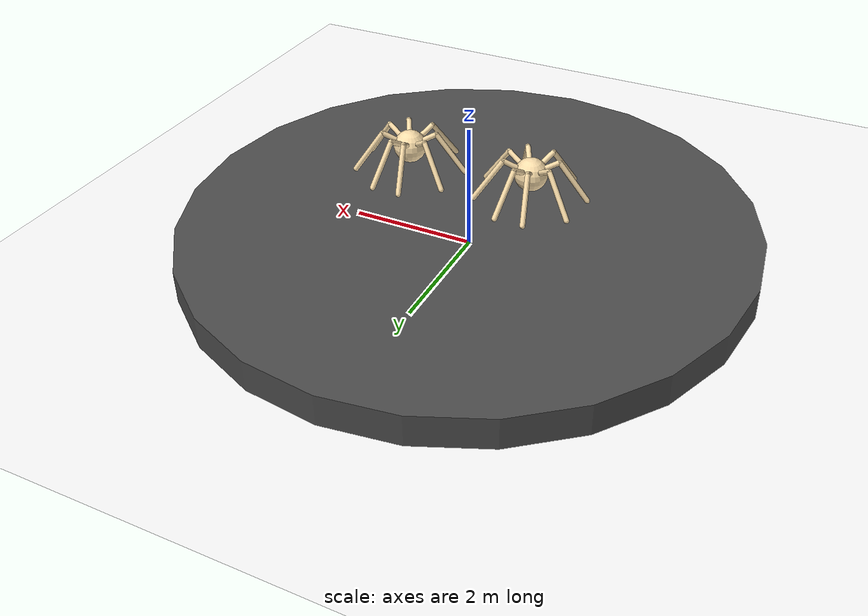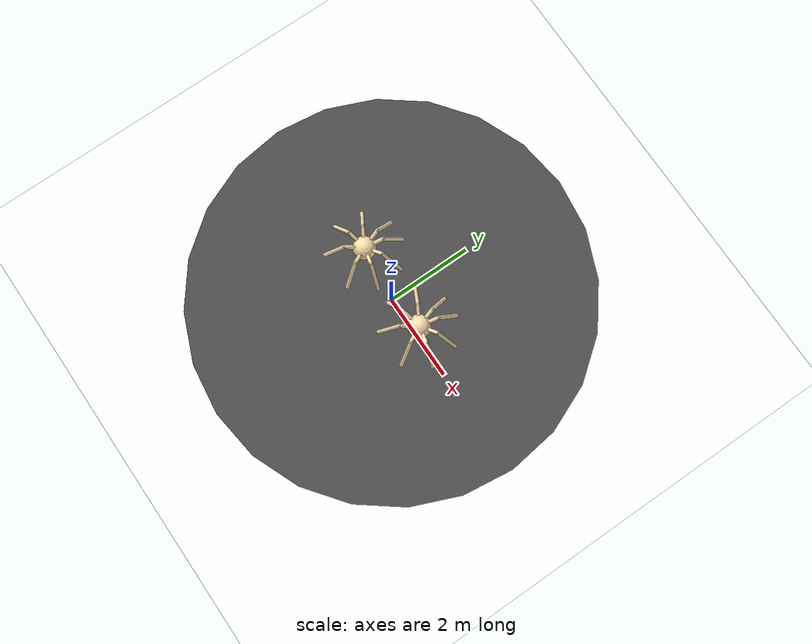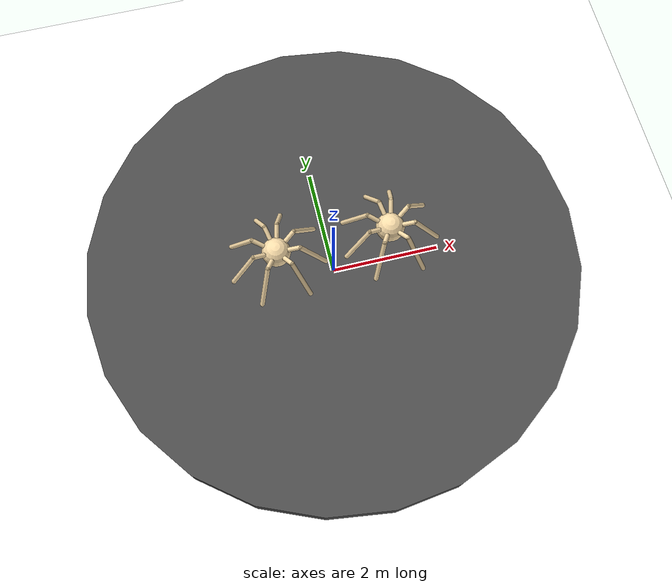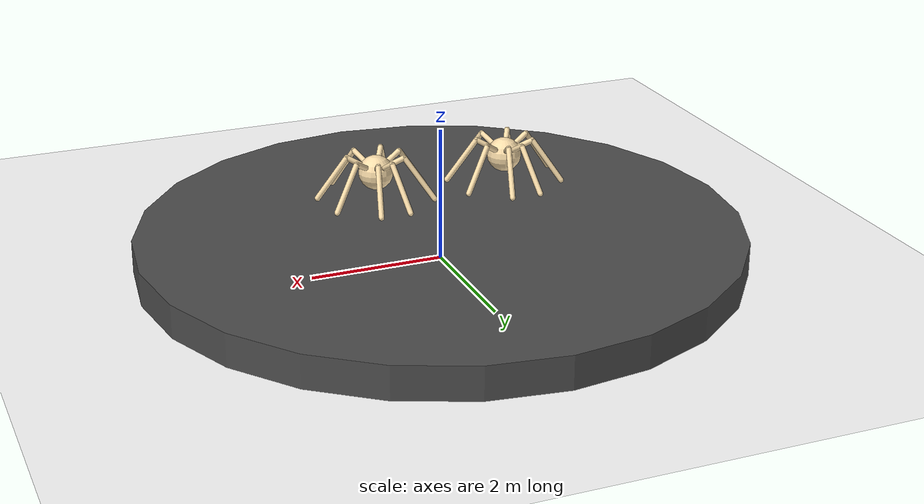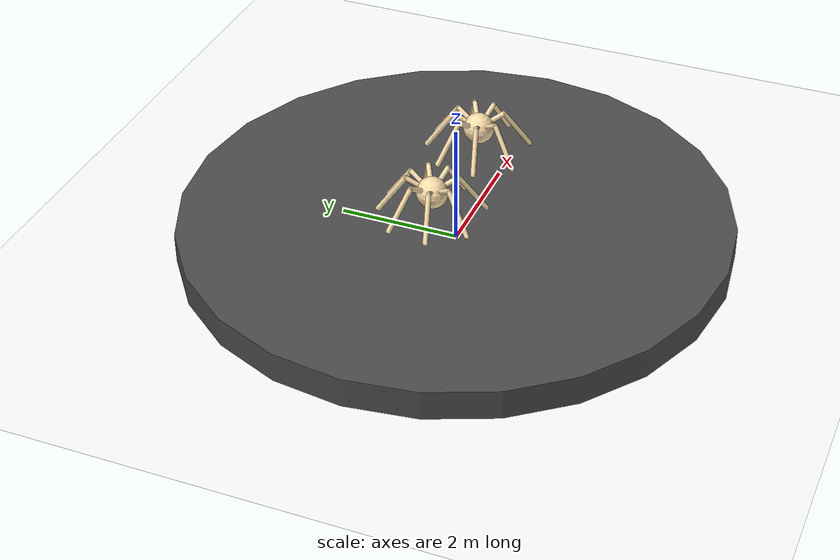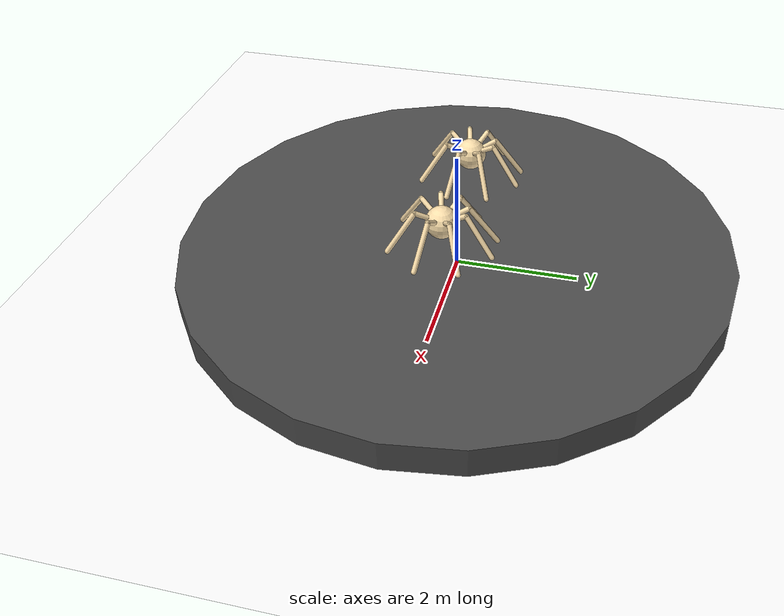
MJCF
<mujoco model="mutiagent_world">
  <compiler angle="degree" coordinate="local" inertiafromgeom="true" />
  <option integrator="RK4" timestep="0.003" solver="PGS" iterations="1000" />
  <default>
    <joint armature="1" damping="1" limited="true" />
  <default class="agent0"><geom conaffinity="0" condim="3" density="5.0" friction="1 0.5 0.5" margin="0.01" rgba="0.98 0.87 0.67 1" material="geom" contype="1" />
    <motor ctrllimited="true" ctrlrange="-1. 1." />
    <joint armature="1" damping="1" limited="true" />
  </default><default class="agent1"><geom conaffinity="1" condim="3" density="5.0" friction="1 0.5 0.5" margin="0.01" rgba="0.98 0.87 0.67 1" material="geom" contype="0" />
    <motor ctrllimited="true" ctrlrange="-1. 1." />
    <joint armature="1" damping="1" limited="true" />
  </default></default>
  <visual>
    <headlight ambient=".1 .1 .1" diffuse=".6 .6 .6" specular="0.3 0.3 0.3" />
    <map znear=".01" />
    <quality shadowsize="16384" />
  </visual>
  <asset>
    <texture builtin="gradient" height="100" rgb1="1 1 1" rgb2="0 0 0" type="skybox" width="100" />
    <texture builtin="flat" height="1278" mark="cross" markrgb="0 0 0" name="texgeom" random="0.01" rgb1="0.8 0.6 0.4" rgb2="0.8 0.6 0.4" type="cube" width="127" />
    <texture builtin="checker" height="100" name="texplane" rgb1="0.5 0.5 0.5" rgb2="0.5 0.5 0.5" type="2d" width="100" markrgb="0.2 0.2 0.2" mark="edge" />
    <texture name="MatPlane" type="2d" builtin="checker" rgb1=".5 .5 .5" rgb2=".5 .5 .5" width="300" height="300" mark="edge" markrgb="0.1 0.1 0.1" />
    <material name="MatPlane" texture="MatPlane" texrepeat="2 2" texuniform="true" reflectance=".2" />
    <material name="geom" texture="texgeom" texuniform="true" />
  </asset>
  <worldbody>
    <light cutoff="100" diffuse="1 1 1" dir="-0 0 -1.3" directional="true" exponent="1" pos="0 0 1.3" specular=".1 .1 .1" />
    <geom contype="1" conaffinity="1" friction="1 .1 .1" condim="3" material="MatPlane" name="floor" pos="0 0 0" rgba="1 1 1 1" size="20 20 0.125" type="plane" />
    <geom fromto="4 -5 0  4 +5 0" name="rightgoal" rgba="0.6 0.0 0.0 0" size=".03" type="cylinder" />
    <geom fromto="-4 -5 0  -4 +5 0" name="leftgoal" rgba="0.6 0.0 0.0 0" size=".03" type="cylinder" />
    <geom conaffinity="1" condim="3" contype="1" friction="1 .1 .1" name="arena" size="4.5 .25" type="cylinder" pos="0 0 0.25" rgba="0.3 0.3 0.3 1" />
  <body name="agent0/0" pos="-1 0 1.5">
      <geom pos="0 0 0" size="0.25" type="sphere" class="agent0" name="agent0/anon4704750625" />
      <joint armature="0" damping="0" limited="false" margin="0.01" name="agent0/0_joint" pos="0 0 0" type="free" />

      <body name="agent0/1" pos="0 0 0">
        <geom density="5.0" fromto="0 0 0 -0.056 0.209 0.125" size="0.04" type="capsule" class="agent0" name="agent0/anon1644658403" />
        <body name="agent0/11" pos="-0.056 0.209 0.125">
          <joint axis="0 0 1" name="agent0/11_joint" pos="0 0 0" range="-20 20" type="hinge" />
          <geom density="5.0" fromto="0 0 0 -0.050 0.188 0.113" size="0.04" type="capsule" class="agent0" name="agent0/anon4173471663" />
          <body name="agent0/111" pos="-0.050 0.188 0.113">
            <joint axis="0.97 0.26 0" name="agent0/111_joint" pos="0 0 0" range="-35 45" type="hinge" />
            <geom density="5.0" fromto="0 0 0 -0.112 0.418 -0.600" size="0.04" type="capsule" class="agent0" name="agent0/anon7941024387" />
          </body>
        </body>
      </body>

      <body name="agent0/2" pos="0 0 0">
        <geom density="5.0" fromto="0 0 0 0.056 0.209 0.125" size="0.04" type="capsule" class="agent0" name="agent0/anon3099804677" />
        <body name="agent0/12" pos="0.056 0.209 0.125">
          <joint axis="0 0 1" name="agent0/12_joint" pos="0 0 0" range="-20 20" type="hinge" />
          <geom density="5.0" fromto="0 0 0 0.050 0.188 0.113" name="agent0/back_left_leg_geom" size="0.04" type="capsule" class="agent0" />
          <body name="agent0/112" pos="0.050 0.188 0.113">
            <joint axis="-0.97 0.26 0" name="agent0/112_joint" pos="0 0 0" range="-45 35" type="hinge" />
            <geom density="5.0" fromto="0 0 0 0.112 0.418 -0.600" name="agent0/back_left_ankle_geom" size="0.04" type="capsule" class="agent0" />
          </body>
        </body>
      </body>

      <body name="agent0/3" pos="0 0 0">
        <geom density="5.0" fromto="0 0 0 -0.188 0.108 0.125" name="agent0/aux_3_geom" size="0.04" type="capsule" class="agent0" />
        <body name="agent0/13" pos="-0.188 0.108 0.125">
          <joint axis="0 0 1" name="agent0/13_joint" pos="0 0 0" range="-20 20" type="hinge" />
          <geom density="5.0" fromto="0 0 0 -0.170 0.097 0.113" name="agent0/middle_back_right_leg_geom" size="0.04" type="capsule" class="agent0" />
          <body name="agent0/113" pos="-0.170 0.097 0.113">
            <joint axis="0.50 0.87 0" name="agent0/113_joint" pos="0 0 0" range="-35 45" type="hinge" />
            <geom density="5.0" fromto="0 0 0 -0.376 0.216 -0.600" name="agent0/middle_back_right_ankle_geom" size="0.04" type="capsule" class="agent0" />
          </body>
        </body>
      </body>

      <body name="agent0/4" pos="0 0 0">
        <geom density="5.0" fromto="0 0 0 0.188 0.108 0.125" name="agent0/aux_4_geom" size="0.04" type="capsule" class="agent0" />
        <body name="agent0/14" pos="0.188 0.108 0.125">
          <joint axis="0 0 1" name="agent0/14_joint" pos="0 0 0" range="-20 20" type="hinge" />
          <geom density="5.0" fromto="0 0 0 0.170 0.097 0.113" name="agent0/middle_back_left_leg_geom" size="0.04" type="capsule" class="agent0" />
          <body name="agent0/114" pos="0.170 0.097 0.113">
            <joint axis="-0.50 0.87 0" name="agent0/114_joint" pos="0 0 0" range="-45 35" type="hinge" />
            <geom density="5.0" fromto="0 0 0 0.376 0.216 -0.600" name="agent0/middle_back_left_ankle_geom" size="0.04" type="capsule" class="agent0" />
          </body>
        </body>
      </body>

      <body name="agent0/5" pos="0 0 0">
        <geom density="5.0" fromto="0 0 0 -0.209 -0.056 0.125" name="agent0/aux_5_geom" size="0.04" type="capsule" class="agent0" />
        <body name="agent0/15" pos="-0.209 -0.056 0.125">
          <joint axis="0 0 1" name="agent0/15_joint" pos="0 0 0" range="-20 20" type="hinge" />
          <geom density="5.0" fromto="0 0 0 -0.188 -0.050 0.113" name="agent0/middle_front_right_leg_geom" size="0.04" type="capsule" class="agent0" />
          <body name="agent0/115" pos="-0.188 -0.050 0.113">
            <joint axis="-0.26 0.97 0" name="agent0/115_joint" pos="0 0 0" range="-35 45" type="hinge" />
            <geom density="5.0" fromto="0 0 0 -0.418 -0.112 -0.600" name="agent0/middle_front_right_ankle_geom" size="0.04" type="capsule" class="agent0" />
          </body>
        </body>
      </body>

      <body name="agent0/6" pos="0 0 0">
        <geom density="5.0" fromto="0 0 0 0.209 -0.056 0.125" name="agent0/aux_6_geom" size="0.04" type="capsule" class="agent0" />
        <body name="agent0/16" pos="0.209 -0.056 0.125">
          <joint axis="0 0 1" name="agent0/16_joint" pos="0 0 0" range="-20 20" type="hinge" />
          <geom density="5.0" fromto="0 0 0 0.188 -0.050 0.113" name="agent0/middle_front_left_leg_geom" size="0.04" type="capsule" class="agent0" />
          <body name="agent0/116" pos="0.188 -0.050 0.113">
            <joint axis="0.26 0.97 0" name="agent0/116_joint" pos="0 0 0" range="-45 35" type="hinge" />
            <geom density="5.0" fromto="0 0 0 0.418 -0.112 -0.600" name="agent0/middle_front_left_ankle_geom" size="0.04" type="capsule" class="agent0" />
          </body>
        </body>
      </body>

      <body name="agent0/7" pos="0 0 0">
        <geom density="5.0" fromto="0 0 0 -0.108 -0.188 0.125" name="agent0/aux_7_geom" size="0.04" type="capsule" class="agent0" />
        <body name="agent0/17" pos="-0.108 -0.188 0.125">
          <joint axis="0 0 1" name="agent0/17_joint" pos="0 0 0" range="-20 20" type="hinge" />
          <geom density="5.0" fromto="0 0 0 -0.097 -0.170 0.113" name="agent0/front_right_leg_geom" size="0.04" type="capsule" class="agent0" />
          <body name="agent0/117" pos="-0.097 -0.170 0.113">
            <joint axis="-0.87 0.50 0" name="agent0/117_joint" pos="0 0 0" range="-35 45" type="hinge" />
            <geom density="5.0" fromto="0 0 0 -0.216 -0.376 -0.600" name="agent0/front_right_ankle_geom" size="0.04" type="capsule" class="agent0" />
          </body>
        </body>
      </body>

      <body name="agent0/8" pos="0 0 0">
        <geom density="5.0" fromto="0 0 0 0.108 -0.188 0.125" name="agent0/aux_8_geom" size="0.04" type="capsule" class="agent0" />
        <body name="agent0/18" pos="0.108 -0.188 0.125">
          <joint axis="0 0 1" name="agent0/18_joint" pos="0 0 0" range="-20 20" type="hinge" />
          <geom density="5.0" fromto="0 0 0 0.097 -0.170 0.113" name="agent0/front_left_leg_geom" size="0.04" type="capsule" class="agent0" />
          <body name="agent0/118" pos="0.097 -0.170 0.113">
            <joint axis="0.87 0.50 0" name="agent0/118_joint" pos="0 0 0" range="-45 35" type="hinge" />
            <geom density="5.0" fromto="0 0 0 0.216 -0.376 -0.600" name="agent0/front_left_ankle_geom" size="0.04" type="capsule" class="agent0" />
          </body>
        </body>
      </body>
    </body>

  <body name="agent1/0" pos="1 0 1.5">
      <geom pos="0 0 0" size="0.25" type="sphere" class="agent1" name="agent1/anon5308514807" />
      <joint armature="0" damping="0" limited="false" margin="0.01" name="agent1/0_joint" pos="0 0 0" type="free" />

      <body name="agent1/1" pos="0 0 0">
        <geom density="5.0" fromto="0 0 0 -0.056 0.209 0.125" size="0.04" type="capsule" class="agent1" name="agent1/anon9689739662" />
        <body name="agent1/11" pos="-0.056 0.209 0.125">
          <joint axis="0 0 1" name="agent1/11_joint" pos="0 0 0" range="-20 20" type="hinge" />
          <geom density="5.0" fromto="0 0 0 -0.050 0.188 0.113" size="0.04" type="capsule" class="agent1" name="agent1/anon8763595547" />
          <body name="agent1/111" pos="-0.050 0.188 0.113">
            <joint axis="0.97 0.26 0" name="agent1/111_joint" pos="0 0 0" range="-35 45" type="hinge" />
            <geom density="5.0" fromto="0 0 0 -0.112 0.418 -0.600" size="0.04" type="capsule" class="agent1" name="agent1/anon3052273871" />
          </body>
        </body>
      </body>

      <body name="agent1/2" pos="0 0 0">
        <geom density="5.0" fromto="0 0 0 0.056 0.209 0.125" size="0.04" type="capsule" class="agent1" name="agent1/anon9066207066" />
        <body name="agent1/12" pos="0.056 0.209 0.125">
          <joint axis="0 0 1" name="agent1/12_joint" pos="0 0 0" range="-20 20" type="hinge" />
          <geom density="5.0" fromto="0 0 0 0.050 0.188 0.113" name="agent1/back_left_leg_geom" size="0.04" type="capsule" class="agent1" />
          <body name="agent1/112" pos="0.050 0.188 0.113">
            <joint axis="-0.97 0.26 0" name="agent1/112_joint" pos="0 0 0" range="-45 35" type="hinge" />
            <geom density="5.0" fromto="0 0 0 0.112 0.418 -0.600" name="agent1/back_left_ankle_geom" size="0.04" type="capsule" class="agent1" />
          </body>
        </body>
      </body>

      <body name="agent1/3" pos="0 0 0">
        <geom density="5.0" fromto="0 0 0 -0.188 0.108 0.125" name="agent1/aux_3_geom" size="0.04" type="capsule" class="agent1" />
        <body name="agent1/13" pos="-0.188 0.108 0.125">
          <joint axis="0 0 1" name="agent1/13_joint" pos="0 0 0" range="-20 20" type="hinge" />
          <geom density="5.0" fromto="0 0 0 -0.170 0.097 0.113" name="agent1/middle_back_right_leg_geom" size="0.04" type="capsule" class="agent1" />
          <body name="agent1/113" pos="-0.170 0.097 0.113">
            <joint axis="0.50 0.87 0" name="agent1/113_joint" pos="0 0 0" range="-35 45" type="hinge" />
            <geom density="5.0" fromto="0 0 0 -0.376 0.216 -0.600" name="agent1/middle_back_right_ankle_geom" size="0.04" type="capsule" class="agent1" />
          </body>
        </body>
      </body>

      <body name="agent1/4" pos="0 0 0">
        <geom density="5.0" fromto="0 0 0 0.188 0.108 0.125" name="agent1/aux_4_geom" size="0.04" type="capsule" class="agent1" />
        <body name="agent1/14" pos="0.188 0.108 0.125">
          <joint axis="0 0 1" name="agent1/14_joint" pos="0 0 0" range="-20 20" type="hinge" />
          <geom density="5.0" fromto="0 0 0 0.170 0.097 0.113" name="agent1/middle_back_left_leg_geom" size="0.04" type="capsule" class="agent1" />
          <body name="agent1/114" pos="0.170 0.097 0.113">
            <joint axis="-0.50 0.87 0" name="agent1/114_joint" pos="0 0 0" range="-45 35" type="hinge" />
            <geom density="5.0" fromto="0 0 0 0.376 0.216 -0.600" name="agent1/middle_back_left_ankle_geom" size="0.04" type="capsule" class="agent1" />
          </body>
        </body>
      </body>

      <body name="agent1/5" pos="0 0 0">
        <geom density="5.0" fromto="0 0 0 -0.209 -0.056 0.125" name="agent1/aux_5_geom" size="0.04" type="capsule" class="agent1" />
        <body name="agent1/15" pos="-0.209 -0.056 0.125">
          <joint axis="0 0 1" name="agent1/15_joint" pos="0 0 0" range="-20 20" type="hinge" />
          <geom density="5.0" fromto="0 0 0 -0.188 -0.050 0.113" name="agent1/middle_front_right_leg_geom" size="0.04" type="capsule" class="agent1" />
          <body name="agent1/115" pos="-0.188 -0.050 0.113">
            <joint axis="-0.26 0.97 0" name="agent1/115_joint" pos="0 0 0" range="-35 45" type="hinge" />
            <geom density="5.0" fromto="0 0 0 -0.418 -0.112 -0.600" name="agent1/middle_front_right_ankle_geom" size="0.04" type="capsule" class="agent1" />
          </body>
        </body>
      </body>

      <body name="agent1/6" pos="0 0 0">
        <geom density="5.0" fromto="0 0 0 0.209 -0.056 0.125" name="agent1/aux_6_geom" size="0.04" type="capsule" class="agent1" />
        <body name="agent1/16" pos="0.209 -0.056 0.125">
          <joint axis="0 0 1" name="agent1/16_joint" pos="0 0 0" range="-20 20" type="hinge" />
          <geom density="5.0" fromto="0 0 0 0.188 -0.050 0.113" name="agent1/middle_front_left_leg_geom" size="0.04" type="capsule" class="agent1" />
          <body name="agent1/116" pos="0.188 -0.050 0.113">
            <joint axis="0.26 0.97 0" name="agent1/116_joint" pos="0 0 0" range="-45 35" type="hinge" />
            <geom density="5.0" fromto="0 0 0 0.418 -0.112 -0.600" name="agent1/middle_front_left_ankle_geom" size="0.04" type="capsule" class="agent1" />
          </body>
        </body>
      </body>

      <body name="agent1/7" pos="0 0 0">
        <geom density="5.0" fromto="0 0 0 -0.108 -0.188 0.125" name="agent1/aux_7_geom" size="0.04" type="capsule" class="agent1" />
        <body name="agent1/17" pos="-0.108 -0.188 0.125">
          <joint axis="0 0 1" name="agent1/17_joint" pos="0 0 0" range="-20 20" type="hinge" />
          <geom density="5.0" fromto="0 0 0 -0.097 -0.170 0.113" name="agent1/front_right_leg_geom" size="0.04" type="capsule" class="agent1" />
          <body name="agent1/117" pos="-0.097 -0.170 0.113">
            <joint axis="-0.87 0.50 0" name="agent1/117_joint" pos="0 0 0" range="-35 45" type="hinge" />
            <geom density="5.0" fromto="0 0 0 -0.216 -0.376 -0.600" name="agent1/front_right_ankle_geom" size="0.04" type="capsule" class="agent1" />
          </body>
        </body>
      </body>

      <body name="agent1/8" pos="0 0 0">
        <geom density="5.0" fromto="0 0 0 0.108 -0.188 0.125" name="agent1/aux_8_geom" size="0.04" type="capsule" class="agent1" />
        <body name="agent1/18" pos="0.108 -0.188 0.125">
          <joint axis="0 0 1" name="agent1/18_joint" pos="0 0 0" range="-20 20" type="hinge" />
          <geom density="5.0" fromto="0 0 0 0.097 -0.170 0.113" name="agent1/front_left_leg_geom" size="0.04" type="capsule" class="agent1" />
          <body name="agent1/118" pos="0.097 -0.170 0.113">
            <joint axis="0.87 0.50 0" name="agent1/118_joint" pos="0 0 0" range="-45 35" type="hinge" />
            <geom density="5.0" fromto="0 0 0 0.216 -0.376 -0.600" name="agent1/front_left_ankle_geom" size="0.04" type="capsule" class="agent1" />
          </body>
        </body>
      </body>
    </body>

  </worldbody>
<actuator>

    <motor ctrllimited="true" ctrlrange="-1.0 1.0" joint="agent0/11_joint" gear="50" name="agent0/11_joint" class="agent0" />
    <motor ctrllimited="true" ctrlrange="-1.0 1.0" joint="agent0/111_joint" gear="50" name="agent0/111_joint" class="agent0" />
    <motor ctrllimited="true" ctrlrange="-1.0 1.0" joint="agent0/12_joint" gear="50" name="agent0/12_joint" class="agent0" />
    <motor ctrllimited="true" ctrlrange="-1.0 1.0" joint="agent0/112_joint" gear="50" name="agent0/112_joint" class="agent0" />
    <motor ctrllimited="true" ctrlrange="-1.0 1.0" joint="agent0/13_joint" gear="50" name="agent0/13_joint" class="agent0" />
    <motor ctrllimited="true" ctrlrange="-1.0 1.0" joint="agent0/113_joint" gear="50" name="agent0/113_joint" class="agent0" />
    <motor ctrllimited="true" ctrlrange="-1.0 1.0" joint="agent0/14_joint" gear="50" name="agent0/14_joint" class="agent0" />
    <motor ctrllimited="true" ctrlrange="-1.0 1.0" joint="agent0/114_joint" gear="50" name="agent0/114_joint" class="agent0" />
    <motor ctrllimited="true" ctrlrange="-1.0 1.0" joint="agent0/15_joint" gear="50" name="agent0/15_joint" class="agent0" />
    <motor ctrllimited="true" ctrlrange="-1.0 1.0" joint="agent0/115_joint" gear="50" name="agent0/115_joint" class="agent0" />
    <motor ctrllimited="true" ctrlrange="-1.0 1.0" joint="agent0/16_joint" gear="50" name="agent0/16_joint" class="agent0" />
    <motor ctrllimited="true" ctrlrange="-1.0 1.0" joint="agent0/116_joint" gear="50" name="agent0/116_joint" class="agent0" />
    <motor ctrllimited="true" ctrlrange="-1.0 1.0" joint="agent0/17_joint" gear="50" name="agent0/17_joint" class="agent0" />
    <motor ctrllimited="true" ctrlrange="-1.0 1.0" joint="agent0/117_joint" gear="50" name="agent0/117_joint" class="agent0" />
    <motor ctrllimited="true" ctrlrange="-1.0 1.0" joint="agent0/18_joint" gear="50" name="agent0/18_joint" class="agent0" />
    <motor ctrllimited="true" ctrlrange="-1.0 1.0" joint="agent0/118_joint" gear="50" name="agent0/118_joint" class="agent0" />
  <motor ctrllimited="true" ctrlrange="-1.0 1.0" joint="agent1/11_joint" gear="50" name="agent1/11_joint" class="agent1" />
    <motor ctrllimited="true" ctrlrange="-1.0 1.0" joint="agent1/111_joint" gear="50" name="agent1/111_joint" class="agent1" />
    <motor ctrllimited="true" ctrlrange="-1.0 1.0" joint="agent1/12_joint" gear="50" name="agent1/12_joint" class="agent1" />
    <motor ctrllimited="true" ctrlrange="-1.0 1.0" joint="agent1/112_joint" gear="50" name="agent1/112_joint" class="agent1" />
    <motor ctrllimited="true" ctrlrange="-1.0 1.0" joint="agent1/13_joint" gear="50" name="agent1/13_joint" class="agent1" />
    <motor ctrllimited="true" ctrlrange="-1.0 1.0" joint="agent1/113_joint" gear="50" name="agent1/113_joint" class="agent1" />
    <motor ctrllimited="true" ctrlrange="-1.0 1.0" joint="agent1/14_joint" gear="50" name="agent1/14_joint" class="agent1" />
    <motor ctrllimited="true" ctrlrange="-1.0 1.0" joint="agent1/114_joint" gear="50" name="agent1/114_joint" class="agent1" />
    <motor ctrllimited="true" ctrlrange="-1.0 1.0" joint="agent1/15_joint" gear="50" name="agent1/15_joint" class="agent1" />
    <motor ctrllimited="true" ctrlrange="-1.0 1.0" joint="agent1/115_joint" gear="50" name="agent1/115_joint" class="agent1" />
    <motor ctrllimited="true" ctrlrange="-1.0 1.0" joint="agent1/16_joint" gear="50" name="agent1/16_joint" class="agent1" />
    <motor ctrllimited="true" ctrlrange="-1.0 1.0" joint="agent1/116_joint" gear="50" name="agent1/116_joint" class="agent1" />
    <motor ctrllimited="true" ctrlrange="-1.0 1.0" joint="agent1/17_joint" gear="50" name="agent1/17_joint" class="agent1" />
    <motor ctrllimited="true" ctrlrange="-1.0 1.0" joint="agent1/117_joint" gear="50" name="agent1/117_joint" class="agent1" />
    <motor ctrllimited="true" ctrlrange="-1.0 1.0" joint="agent1/18_joint" gear="50" name="agent1/18_joint" class="agent1" />
    <motor ctrllimited="true" ctrlrange="-1.0 1.0" joint="agent1/118_joint" gear="50" name="agent1/118_joint" class="agent1" />
  </actuator>

</mujoco>
